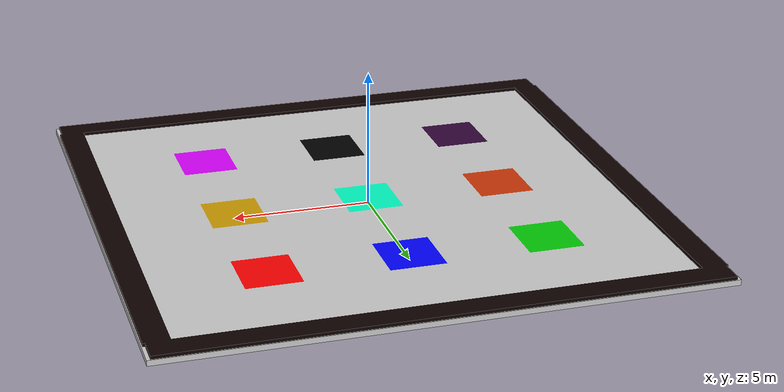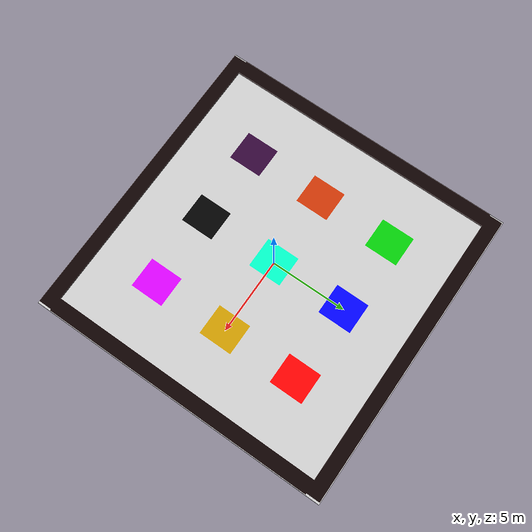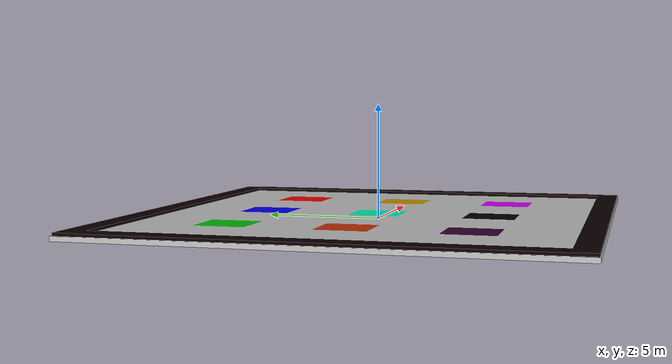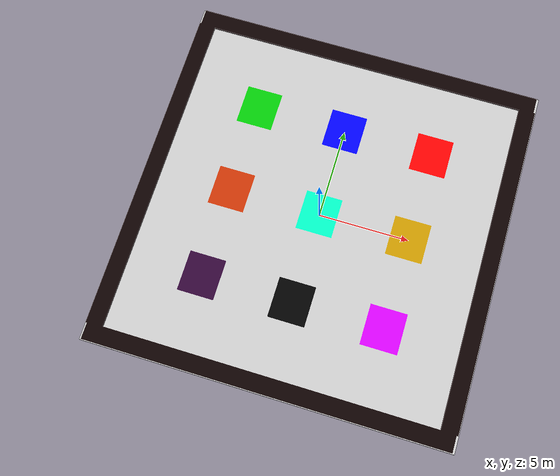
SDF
<?xml version='1.0'?>
<sdf version='1.7'>
  <model name='grid_arena'>
    <link name='arena_base'>
      <pose>0 0 0 0 -0 0</pose>
      <inertial>
        <pose>0 0 0.1 0 -0 0</pose>
        <mass>10000</mass>
        <inertia>
          <ixx>10000</ixx>
          <ixy>0</ixy>
          <ixz>0</ixz>
          <iyy>10000</iyy>
          <iyz>0</iyz>
          <izz>10000</izz>
        </inertia>
      </inertial>
      <self_collide>0</self_collide>
      <enable_wind>0</enable_wind>
      <kinematic>0</kinematic>
      <visual name='arena_base_visual'>
        <pose>0 0 0.1 0 -0 0</pose>
        <geometry>
          <mesh>
            <scale>1 1 1</scale>
            <uri>/home/nsk/Desktop/project_1/src/bot_gazebo/mesh/grid.dae</uri>
          </mesh>
        </geometry>
        <material>
          <shader type='pixel'/>
        </material>
        <transparency>0</transparency>
        <cast_shadows>1</cast_shadows>
      </visual>
      <collision name='arena_base_collision'>
        <laser_retro>0</laser_retro>
        <max_contacts>10</max_contacts>
        <pose>0 0 0.1 0 -0 0</pose>
        <geometry>
          <mesh>
            <uri>/home/nsk/Desktop/project_1/src/bot_gazebo/mesh/grid.dae</uri>
            <scale>1 1 1</scale>
          </mesh>
        </geometry>
        <surface>
          <friction>
            <ode>
              <mu>1</mu>
              <mu2>1</mu2>
              <fdir1>0 0 0</fdir1>
              <slip1>0</slip1>
              <slip2>0</slip2>
            </ode>
            <torsional>
              <coefficient>1</coefficient>
              <patch_radius>0</patch_radius>
              <surface_radius>0</surface_radius>
              <use_patch_radius>1</use_patch_radius>
              <ode>
                <slip>0</slip>
              </ode>
            </torsional>
          </friction>
          <bounce>
            <restitution_coefficient>0</restitution_coefficient>
            <threshold>1e+06</threshold>
          </bounce>
          <contact>
            <collide_without_contact>0</collide_without_contact>
            <collide_without_contact_bitmask>1</collide_without_contact_bitmask>
            <collide_bitmask>1</collide_bitmask>
            <ode>
              <soft_cfm>0</soft_cfm>
              <soft_erp>0.2</soft_erp>
              <kp>1e+13</kp>
              <kd>1</kd>
              <max_vel>0.01</max_vel>
              <min_depth>0</min_depth>
            </ode>
            <bullet>
              <split_impulse>1</split_impulse>
              <split_impulse_penetration_threshold>-0.01</split_impulse_penetration_threshold>
              <soft_cfm>0</soft_cfm>
              <soft_erp>0.2</soft_erp>
              <kp>1e+13</kp>
              <kd>1</kd>
            </bullet>
          </contact>
        </surface>
      </collision>
    </link>
    <static>0</static>
    <allow_auto_disable>1</allow_auto_disable>
  </model>
</sdf>
